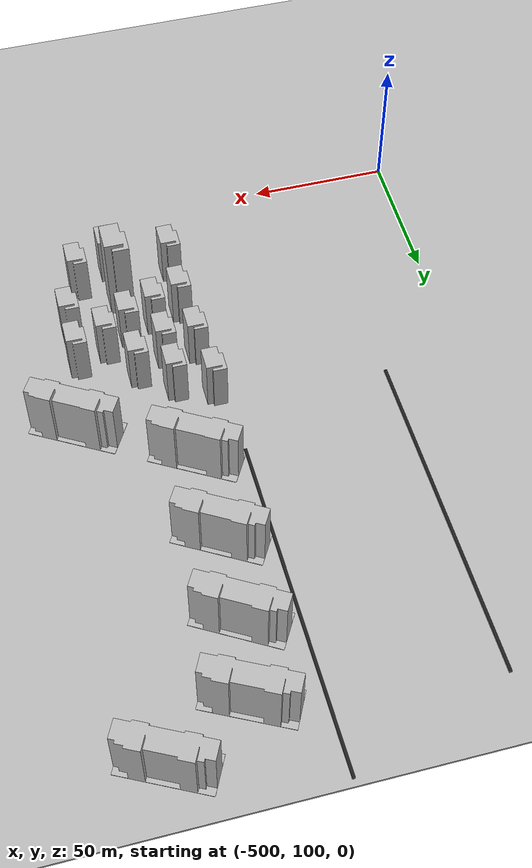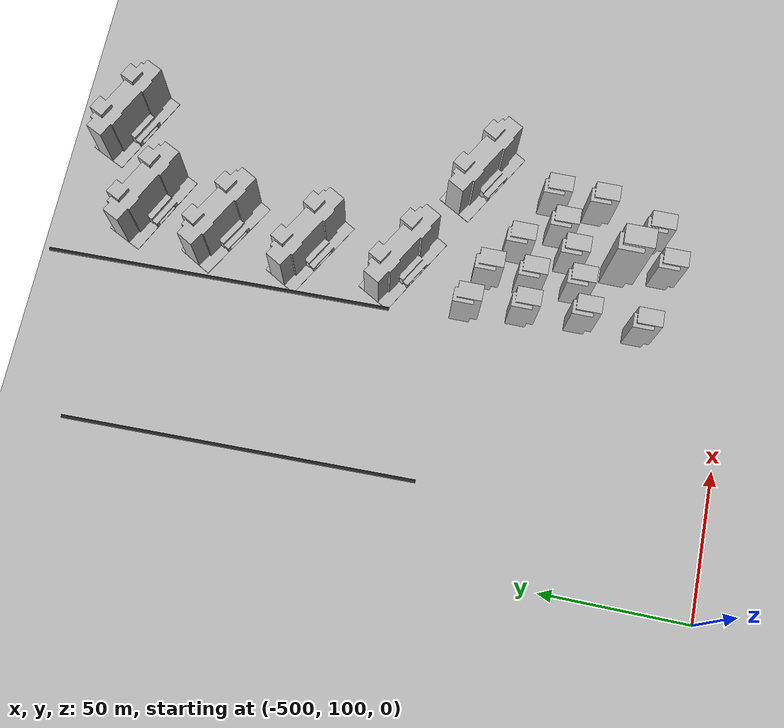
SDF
<sdf version="1.7">
 <world name="default">
  <model name="ground_plane">
   <static>1</static>
   <link name="link">
    <collision name="collision">
     <geometry><mesh><uri>model://ground_plane/scripts/plane.dae</uri><normal>0 0 1</normal></mesh></geometry>
     <surface><friction><ode><mu>100</mu><mu2>50</mu2></ode></friction></surface>
    </collision>
    <visual name="visual">
     <geometry><mesh><uri>model://ground_plane/scripts/plane.dae</uri><normal>0 0 1</normal></mesh></geometry>
     <material>
      <lighting>1</lighting>
      <script><uri>model://ground_plane/scripts/plane.jpg</uri><name>__default__</name></script>
      <shader type="pixel"/>
     </material>
    </visual>
   </link>
  </model>
  <model name="apartment0">
   <static>1</static>
   <link name="link_0">
    <inertial>
     <mass>1</mass>
     <inertia>
      <ixx>0.166667</ixx>
      <ixy>0</ixy>
      <ixz>0</ixz>
      <iyy>0.166667</iyy>
      <iyz>0</iyz>
      <izz>0.166667</izz>
     </inertia>
    </inertial>
    <pose>0.000226 2e-06 0 0 -0 0</pose>
    <visual name="visual">
     <geometry>
      <mesh><uri>model://apartment0/scripts/apartment.dae</uri><scale>0.42 0.21 0.14</scale></mesh>
     </geometry>
     <material>
      <lighting>1</lighting>
      <script><uri>model://apartment0/scripts/building.jpg</uri><name>__default__</name></script>
      <shader type="pixel"/>
     </material>
    </visual>
    <collision name="collision">
     <geometry>
      <mesh><uri>model://apartment0/scripts/apartment.dae</uri><scale>0.42 0.21 0.14</scale></mesh>
     </geometry>
     <surface>
      <friction>
       <ode><mu>1</mu><mu2>1</mu2><fdir1>0 0 0</fdir1><slip1>0</slip1><slip2>0</slip2></ode>
       <torsional>
        <coefficient>1</coefficient>
        <patch_radius>0</patch_radius>
        <surface_radius>0</surface_radius>
        <use_patch_radius>1</use_patch_radius>
        <ode><slip>0</slip></ode>
       </torsional>
      </friction>
      <bounce><restitution_coefficient>0</restitution_coefficient><threshold>1e+06</threshold></bounce>
      <contact>
       <collide_without_contact>0</collide_without_contact>
       <collide_without_contact_bitmask>1</collide_without_contact_bitmask>
       <collide_bitmask>1</collide_bitmask>
       <ode>
        <soft_cfm>0</soft_cfm>
        <soft_erp>0.2</soft_erp>
        <kp>1e+13</kp>
        <kd>1</kd>
        <max_vel>0.01</max_vel>
        <min_depth>0</min_depth>
       </ode>
       <bullet>
        <split_impulse>1</split_impulse>
        <split_impulse_penetration_threshold>-0.01</split_impulse_penetration_threshold>
        <soft_cfm>0</soft_cfm>
        <soft_erp>0.2</soft_erp>
        <kp>1e+13</kp>
        <kd>1</kd>
       </bullet>
      </contact>
     </surface>
    </collision>
   </link>
   <static>0</static>
   <pose>-394.801 304.425 0.2281 0 0 -0.465657</pose>
  </model>
  <model name="apartment0_clone_2">
   <static>1</static>
   <link name="link_0">
    <inertial>
     <mass>1</mass>
     <inertia>
      <ixx>0.166667</ixx>
      <ixy>0</ixy>
      <ixz>0</ixz>
      <iyy>0.166667</iyy>
      <iyz>0</iyz>
      <izz>0.166667</izz>
     </inertia>
    </inertial>
    <pose>0.000226 2e-06 0 0 -0 0</pose>
    <visual name="visual">
     <geometry>
      <mesh><uri>model://apartment0/scripts/apartment.dae</uri><scale>0.42 0.21 0.14</scale></mesh>
     </geometry>
     <material>
      <lighting>1</lighting>
      <script><uri>model://apartment0/scripts/building.jpg</uri><name>__default__</name></script>
      <shader type="pixel"/>
     </material>
    </visual>
    <collision name="collision">
     <geometry>
      <mesh><uri>model://apartment0/scripts/apartment.dae</uri><scale>0.42 0.21 0.14</scale></mesh>
     </geometry>
     <surface>
      <friction>
       <ode><mu>1</mu><mu2>1</mu2><fdir1>0 0 0</fdir1><slip1>0</slip1><slip2>0</slip2></ode>
       <torsional>
        <coefficient>1</coefficient>
        <patch_radius>0</patch_radius>
        <surface_radius>0</surface_radius>
        <use_patch_radius>1</use_patch_radius>
        <ode><slip>0</slip></ode>
       </torsional>
      </friction>
      <bounce><restitution_coefficient>0</restitution_coefficient><threshold>1e+06</threshold></bounce>
      <contact>
       <collide_without_contact>0</collide_without_contact>
       <collide_without_contact_bitmask>1</collide_without_contact_bitmask>
       <collide_bitmask>1</collide_bitmask>
       <ode>
        <soft_cfm>0</soft_cfm>
        <soft_erp>0.2</soft_erp>
        <kp>1e+13</kp>
        <kd>1</kd>
        <max_vel>0.01</max_vel>
        <min_depth>0</min_depth>
       </ode>
       <bullet>
        <split_impulse>1</split_impulse>
        <split_impulse_penetration_threshold>-0.01</split_impulse_penetration_threshold>
        <soft_cfm>0</soft_cfm>
        <soft_erp>0.2</soft_erp>
        <kp>1e+13</kp>
        <kd>1</kd>
       </bullet>
      </contact>
     </surface>
    </collision>
   </link>
   <static>0</static>
   <pose>-366.107 318.006 0.2281 0 0 -0.465657</pose>
  </model>
  <model name="apartment1_0_clone_13">
   <static>1</static>
   <link name="link_0">
    <inertial>
     <mass>1</mass>
     <inertia>
      <ixx>0.166667</ixx>
      <ixy>0</ixy>
      <ixz>0</ixz>
      <iyy>0.166667</iyy>
      <iyz>0</iyz>
      <izz>0.166667</izz>
     </inertia>
    </inertial>
    <pose>1e-06 -0 0 0 -0 0</pose>
    <visual name="visual">
     <geometry>
      <mesh><uri>model://apartment1/scripts/apartment1.dae</uri><scale>0.14 0.14 0.175</scale></mesh>
     </geometry>
     <material>
      <lighting>1</lighting>
      <script><uri>model://apartment1/scripts/apartment1.jpg</uri><name>__default__</name></script>
      <shader type="pixel"/>
     </material>
    </visual>
    <collision name="collision">
     <geometry>
      <mesh><uri>model://apartment1/scripts/apartment1.dae</uri><scale>0.14 0.14 0.175</scale></mesh>
     </geometry>
     <surface>
      <friction>
       <ode><mu>1</mu><mu2>1</mu2><fdir1>0 0 0</fdir1><slip1>0</slip1><slip2>0</slip2></ode>
       <torsional>
        <coefficient>1</coefficient>
        <patch_radius>0</patch_radius>
        <surface_radius>0</surface_radius>
        <use_patch_radius>1</use_patch_radius>
        <ode><slip>0</slip></ode>
       </torsional>
      </friction>
      <bounce><restitution_coefficient>0</restitution_coefficient><threshold>1e+06</threshold></bounce>
      <contact>
       <collide_without_contact>0</collide_without_contact>
       <collide_without_contact_bitmask>1</collide_without_contact_bitmask>
       <collide_bitmask>1</collide_bitmask>
       <ode>
        <soft_cfm>0</soft_cfm>
        <soft_erp>0.2</soft_erp>
        <kp>1e+13</kp>
        <kd>1</kd>
        <max_vel>0.01</max_vel>
        <min_depth>0</min_depth>
       </ode>
       <bullet>
        <split_impulse>1</split_impulse>
        <split_impulse_penetration_threshold>-0.01</split_impulse_penetration_threshold>
        <soft_cfm>0</soft_cfm>
        <soft_erp>0.2</soft_erp>
        <kp>1e+13</kp>
        <kd>1</kd>
       </bullet>
      </contact>
     </surface>
    </collision>
   </link>
   <static>0</static>
   <pose>-407.986 130.369 0 0 -0 0</pose>
  </model>
  <model name="apartment1_0_clone_14">
   <static>1</static>
   <link name="link_0">
    <inertial>
     <mass>1</mass>
     <inertia>
      <ixx>0.166667</ixx>
      <ixy>0</ixy>
      <ixz>0</ixz>
      <iyy>0.166667</iyy>
      <iyz>0</iyz>
      <izz>0.166667</izz>
     </inertia>
    </inertial>
    <pose>1e-06 -0 0 0 -0 0</pose>
    <visual name="visual">
     <geometry>
      <mesh><uri>model://apartment1/scripts/apartment1.dae</uri><scale>0.14 0.14 0.175</scale></mesh>
     </geometry>
     <material>
      <lighting>1</lighting>
      <script><uri>model://apartment1/scripts/apartment1.jpg</uri><name>__default__</name></script>
      <shader type="pixel"/>
     </material>
    </visual>
    <collision name="collision">
     <geometry>
      <mesh><uri>model://apartment1/scripts/apartment1.dae</uri><scale>0.14 0.14 0.175</scale></mesh>
     </geometry>
     <surface>
      <friction>
       <ode><mu>1</mu><mu2>1</mu2><fdir1>0 0 0</fdir1><slip1>0</slip1><slip2>0</slip2></ode>
       <torsional>
        <coefficient>1</coefficient>
        <patch_radius>0</patch_radius>
        <surface_radius>0</surface_radius>
        <use_patch_radius>1</use_patch_radius>
        <ode><slip>0</slip></ode>
       </torsional>
      </friction>
      <bounce><restitution_coefficient>0</restitution_coefficient><threshold>1e+06</threshold></bounce>
      <contact>
       <collide_without_contact>0</collide_without_contact>
       <collide_without_contact_bitmask>1</collide_without_contact_bitmask>
       <collide_bitmask>1</collide_bitmask>
       <ode>
        <soft_cfm>0</soft_cfm>
        <soft_erp>0.2</soft_erp>
        <kp>1e+13</kp>
        <kd>1</kd>
        <max_vel>0.01</max_vel>
        <min_depth>0</min_depth>
       </ode>
       <bullet>
        <split_impulse>1</split_impulse>
        <split_impulse_penetration_threshold>-0.01</split_impulse_penetration_threshold>
        <soft_cfm>0</soft_cfm>
        <soft_erp>0.2</soft_erp>
        <kp>1e+13</kp>
        <kd>1</kd>
       </bullet>
      </contact>
     </surface>
    </collision>
   </link>
   <static>0</static>
   <pose>-407.388 150.37 0 0 -0 0</pose>
  </model>
  <model name="apartment1_0_clone_15">
   <static>1</static>
   <link name="link_0">
    <inertial>
     <mass>1</mass>
     <inertia>
      <ixx>0.166667</ixx>
      <ixy>0</ixy>
      <ixz>0</ixz>
      <iyy>0.166667</iyy>
      <iyz>0</iyz>
      <izz>0.166667</izz>
     </inertia>
    </inertial>
    <pose>1e-06 -0 0 0 -0 0</pose>
    <visual name="visual">
     <geometry>
      <mesh><uri>model://apartment1/scripts/apartment1.dae</uri><scale>0.14 0.14 0.175</scale></mesh>
     </geometry>
     <material>
      <lighting>1</lighting>
      <script><uri>model://apartment1/scripts/apartment1.jpg</uri><name>__default__</name></script>
      <shader type="pixel"/>
     </material>
    </visual>
    <collision name="collision">
     <geometry>
      <mesh><uri>model://apartment1/scripts/apartment1.dae</uri><scale>0.14 0.14 0.175</scale></mesh>
     </geometry>
     <surface>
      <friction>
       <ode><mu>1</mu><mu2>1</mu2><fdir1>0 0 0</fdir1><slip1>0</slip1><slip2>0</slip2></ode>
       <torsional>
        <coefficient>1</coefficient>
        <patch_radius>0</patch_radius>
        <surface_radius>0</surface_radius>
        <use_patch_radius>1</use_patch_radius>
        <ode><slip>0</slip></ode>
       </torsional>
      </friction>
      <bounce><restitution_coefficient>0</restitution_coefficient><threshold>1e+06</threshold></bounce>
      <contact>
       <collide_without_contact>0</collide_without_contact>
       <collide_without_contact_bitmask>1</collide_without_contact_bitmask>
       <collide_bitmask>1</collide_bitmask>
       <ode>
        <soft_cfm>0</soft_cfm>
        <soft_erp>0.2</soft_erp>
        <kp>1e+13</kp>
        <kd>1</kd>
        <max_vel>0.01</max_vel>
        <min_depth>0</min_depth>
       </ode>
       <bullet>
        <split_impulse>1</split_impulse>
        <split_impulse_penetration_threshold>-0.01</split_impulse_penetration_threshold>
        <soft_cfm>0</soft_cfm>
        <soft_erp>0.2</soft_erp>
        <kp>1e+13</kp>
        <kd>1</kd>
       </bullet>
      </contact>
     </surface>
    </collision>
   </link>
   <static>0</static>
   <pose>-408.838 170.208 0 0 -0 0</pose>
  </model>
  <model name="apartment1_0_clone_1_clone_34">
   <static>1</static>
   <link name="link_0">
    <inertial>
     <mass>1</mass>
     <inertia>
      <ixx>0.166667</ixx>
      <ixy>0</ixy>
      <ixz>0</ixz>
      <iyy>0.166667</iyy>
      <iyz>0</iyz>
      <izz>0.166667</izz>
     </inertia>
    </inertial>
    <pose>1e-06 -0 0 0 -0 0</pose>
    <visual name="visual">
     <geometry>
      <mesh><uri>model://apartment1/scripts/apartment1.dae</uri><scale>0.14 0.14 0.175</scale></mesh>
     </geometry>
     <material>
      <lighting>1</lighting>
      <script><uri>model://apartment1/scripts/apartment1.jpg</uri><name>__default__</name></script>
      <shader type="pixel"/>
     </material>
    </visual>
    <collision name="collision">
     <geometry>
      <mesh><uri>model://apartment1/scripts/apartment1.dae</uri><scale>0.14 0.14 0.175</scale></mesh>
     </geometry>
     <surface>
      <friction>
       <ode><mu>1</mu><mu2>1</mu2><fdir1>0 0 0</fdir1><slip1>0</slip1><slip2>0</slip2></ode>
       <torsional>
        <coefficient>1</coefficient>
        <patch_radius>0</patch_radius>
        <surface_radius>0</surface_radius>
        <use_patch_radius>1</use_patch_radius>
        <ode><slip>0</slip></ode>
       </torsional>
      </friction>
      <bounce><restitution_coefficient>0</restitution_coefficient><threshold>1e+06</threshold></bounce>
      <contact>
       <collide_without_contact>0</collide_without_contact>
       <collide_without_contact_bitmask>1</collide_without_contact_bitmask>
       <collide_bitmask>1</collide_bitmask>
       <ode>
        <soft_cfm>0</soft_cfm>
        <soft_erp>0.2</soft_erp>
        <kp>1e+13</kp>
        <kd>1</kd>
        <max_vel>0.01</max_vel>
        <min_depth>0</min_depth>
       </ode>
       <bullet>
        <split_impulse>1</split_impulse>
        <split_impulse_penetration_threshold>-0.01</split_impulse_penetration_threshold>
        <soft_cfm>0</soft_cfm>
        <soft_erp>0.2</soft_erp>
        <kp>1e+13</kp>
        <kd>1</kd>
       </bullet>
      </contact>
     </surface>
    </collision>
   </link>
   <static>0</static>
   <pose>-385.97 124.803 0 0 -0 0</pose>
  </model>
  <model name="apartment1_0_clone_1_clone_35">
   <static>1</static>
   <link name="link_0">
    <inertial>
     <mass>1</mass>
     <inertia>
      <ixx>0.166667</ixx>
      <ixy>0</ixy>
      <ixz>0</ixz>
      <iyy>0.166667</iyy>
      <iyz>0</iyz>
      <izz>0.166667</izz>
     </inertia>
    </inertial>
    <pose>1e-06 -0 0 0 -0 0</pose>
    <visual name="visual">
     <geometry>
      <mesh><uri>model://apartment1/scripts/apartment1.dae</uri><scale>0.14 0.14 0.175</scale></mesh>
     </geometry>
     <material>
      <lighting>1</lighting>
      <script><uri>model://apartment1/scripts/apartment1.jpg</uri><name>__default__</name></script>
      <shader type="pixel"/>
     </material>
    </visual>
    <collision name="collision">
     <geometry>
      <mesh><uri>model://apartment1/scripts/apartment1.dae</uri><scale>0.14 0.14 0.175</scale></mesh>
     </geometry>
     <surface>
      <friction>
       <ode><mu>1</mu><mu2>1</mu2><fdir1>0 0 0</fdir1><slip1>0</slip1><slip2>0</slip2></ode>
       <torsional>
        <coefficient>1</coefficient>
        <patch_radius>0</patch_radius>
        <surface_radius>0</surface_radius>
        <use_patch_radius>1</use_patch_radius>
        <ode><slip>0</slip></ode>
       </torsional>
      </friction>
      <bounce><restitution_coefficient>0</restitution_coefficient><threshold>1e+06</threshold></bounce>
      <contact>
       <collide_without_contact>0</collide_without_contact>
       <collide_without_contact_bitmask>1</collide_without_contact_bitmask>
       <collide_bitmask>1</collide_bitmask>
       <ode>
        <soft_cfm>0</soft_cfm>
        <soft_erp>0.2</soft_erp>
        <kp>1e+13</kp>
        <kd>1</kd>
        <max_vel>0.01</max_vel>
        <min_depth>0</min_depth>
       </ode>
       <bullet>
        <split_impulse>1</split_impulse>
        <split_impulse_penetration_threshold>-0.01</split_impulse_penetration_threshold>
        <soft_cfm>0</soft_cfm>
        <soft_erp>0.2</soft_erp>
        <kp>1e+13</kp>
        <kd>1</kd>
       </bullet>
      </contact>
     </surface>
    </collision>
   </link>
   <static>0</static>
   <pose>-373.725 130.395 0 0 -0 0</pose>
  </model>
  <model name="apartment1_0_clone_1_clone_42">
   <static>1</static>
   <link name="link_0">
    <inertial>
     <mass>1</mass>
     <inertia>
      <ixx>0.166667</ixx>
      <ixy>0</ixy>
      <ixz>0</ixz>
      <iyy>0.166667</iyy>
      <iyz>0</iyz>
      <izz>0.166667</izz>
     </inertia>
    </inertial>
    <pose>1e-06 -0 0 0 -0 0</pose>
    <visual name="visual">
     <geometry>
      <mesh><uri>model://apartment1/scripts/apartment1.dae</uri><scale>0.14 0.14 0.175</scale></mesh>
     </geometry>
     <material>
      <lighting>1</lighting>
      <script><uri>model://apartment1/scripts/apartment1.jpg</uri><name>__default__</name></script>
      <shader type="pixel"/>
     </material>
    </visual>
    <collision name="collision">
     <geometry>
      <mesh><uri>model://apartment1/scripts/apartment1.dae</uri><scale>0.14 0.14 0.175</scale></mesh>
     </geometry>
     <surface>
      <friction>
       <ode><mu>1</mu><mu2>1</mu2><fdir1>0 0 0</fdir1><slip1>0</slip1><slip2>0</slip2></ode>
       <torsional>
        <coefficient>1</coefficient>
        <patch_radius>0</patch_radius>
        <surface_radius>0</surface_radius>
        <use_patch_radius>1</use_patch_radius>
        <ode><slip>0</slip></ode>
       </torsional>
      </friction>
      <bounce><restitution_coefficient>0</restitution_coefficient><threshold>1e+06</threshold></bounce>
      <contact>
       <collide_without_contact>0</collide_without_contact>
       <collide_without_contact_bitmask>1</collide_without_contact_bitmask>
       <collide_bitmask>1</collide_bitmask>
       <ode>
        <soft_cfm>0</soft_cfm>
        <soft_erp>0.2</soft_erp>
        <kp>1e+13</kp>
        <kd>1</kd>
        <max_vel>0.01</max_vel>
        <min_depth>0</min_depth>
       </ode>
       <bullet>
        <split_impulse>1</split_impulse>
        <split_impulse_penetration_threshold>-0.01</split_impulse_penetration_threshold>
        <soft_cfm>0</soft_cfm>
        <soft_erp>0.2</soft_erp>
        <kp>1e+13</kp>
        <kd>1</kd>
       </bullet>
      </contact>
     </surface>
    </collision>
   </link>
   <static>0</static>
   <pose>-367.268 150.289 0 0 -0 0</pose>
  </model>
  <model name="apartment1_0_clone_1_clone_44">
   <static>1</static>
   <link name="link_0">
    <inertial>
     <mass>1</mass>
     <inertia>
      <ixx>0.166667</ixx>
      <ixy>0</ixy>
      <ixz>0</ixz>
      <iyy>0.166667</iyy>
      <iyz>0</iyz>
      <izz>0.166667</izz>
     </inertia>
    </inertial>
    <pose>1e-06 -0 0 0 -0 0</pose>
    <visual name="visual">
     <geometry>
      <mesh><uri>model://apartment1/scripts/apartment1.dae</uri><scale>0.14 0.14 0.175</scale></mesh>
     </geometry>
     <material>
      <lighting>1</lighting>
      <script><uri>model://apartment1/scripts/apartment1.jpg</uri><name>__default__</name></script>
      <shader type="pixel"/>
     </material>
    </visual>
    <collision name="collision">
     <geometry>
      <mesh><uri>model://apartment1/scripts/apartment1.dae</uri><scale>0.14 0.14 0.175</scale></mesh>
     </geometry>
     <surface>
      <friction>
       <ode><mu>1</mu><mu2>1</mu2><fdir1>0 0 0</fdir1><slip1>0</slip1><slip2>0</slip2></ode>
       <torsional>
        <coefficient>1</coefficient>
        <patch_radius>0</patch_radius>
        <surface_radius>0</surface_radius>
        <use_patch_radius>1</use_patch_radius>
        <ode><slip>0</slip></ode>
       </torsional>
      </friction>
      <bounce><restitution_coefficient>0</restitution_coefficient><threshold>1e+06</threshold></bounce>
      <contact>
       <collide_without_contact>0</collide_without_contact>
       <collide_without_contact_bitmask>1</collide_without_contact_bitmask>
       <collide_bitmask>1</collide_bitmask>
       <ode>
        <soft_cfm>0</soft_cfm>
        <soft_erp>0.2</soft_erp>
        <kp>1e+13</kp>
        <kd>1</kd>
        <max_vel>0.01</max_vel>
        <min_depth>0</min_depth>
       </ode>
       <bullet>
        <split_impulse>1</split_impulse>
        <split_impulse_penetration_threshold>-0.01</split_impulse_penetration_threshold>
        <soft_cfm>0</soft_cfm>
        <soft_erp>0.2</soft_erp>
        <kp>1e+13</kp>
        <kd>1</kd>
       </bullet>
      </contact>
     </surface>
    </collision>
   </link>
   <static>0</static>
   <pose>-397.246 153.558 0 0 -0 0</pose>
  </model>
  <model name="apartment1_0_clone_1_clone_45">
   <static>1</static>
   <link name="link_0">
    <inertial>
     <mass>1</mass>
     <inertia>
      <ixx>0.166667</ixx>
      <ixy>0</ixy>
      <ixz>0</ixz>
      <iyy>0.166667</iyy>
      <iyz>0</iyz>
      <izz>0.166667</izz>
     </inertia>
    </inertial>
    <pose>1e-06 -0 0 0 -0 0</pose>
    <visual name="visual">
     <geometry>
      <mesh><uri>model://apartment1/scripts/apartment1.dae</uri><scale>0.14 0.14 0.175</scale></mesh>
     </geometry>
     <material>
      <lighting>1</lighting>
      <script><uri>model://apartment1/scripts/apartment1.jpg</uri><name>__default__</name></script>
      <shader type="pixel"/>
     </material>
    </visual>
    <collision name="collision">
     <geometry>
      <mesh><uri>model://apartment1/scripts/apartment1.dae</uri><scale>0.14 0.14 0.175</scale></mesh>
     </geometry>
     <surface>
      <friction>
       <ode><mu>1</mu><mu2>1</mu2><fdir1>0 0 0</fdir1><slip1>0</slip1><slip2>0</slip2></ode>
       <torsional>
        <coefficient>1</coefficient>
        <patch_radius>0</patch_radius>
        <surface_radius>0</surface_radius>
        <use_patch_radius>1</use_patch_radius>
        <ode><slip>0</slip></ode>
       </torsional>
      </friction>
      <bounce><restitution_coefficient>0</restitution_coefficient><threshold>1e+06</threshold></bounce>
      <contact>
       <collide_without_contact>0</collide_without_contact>
       <collide_without_contact_bitmask>1</collide_without_contact_bitmask>
       <collide_bitmask>1</collide_bitmask>
       <ode>
        <soft_cfm>0</soft_cfm>
        <soft_erp>0.2</soft_erp>
        <kp>1e+13</kp>
        <kd>1</kd>
        <max_vel>0.01</max_vel>
        <min_depth>0</min_depth>
       </ode>
       <bullet>
        <split_impulse>1</split_impulse>
        <split_impulse_penetration_threshold>-0.01</split_impulse_penetration_threshold>
        <soft_cfm>0</soft_cfm>
        <soft_erp>0.2</soft_erp>
        <kp>1e+13</kp>
        <kd>1</kd>
       </bullet>
      </contact>
     </surface>
    </collision>
   </link>
   <static>0</static>
   <pose>-387.065 157.176 0 0 -0 0</pose>
  </model>
  <model name="apartment1_0_clone_1_clone_46">
   <static>1</static>
   <link name="link_0">
    <inertial>
     <mass>1</mass>
     <inertia>
      <ixx>0.166667</ixx>
      <ixy>0</ixy>
      <ixz>0</ixz>
      <iyy>0.166667</iyy>
      <iyz>0</iyz>
      <izz>0.166667</izz>
     </inertia>
    </inertial>
    <pose>1e-06 -0 0 0 -0 0</pose>
    <visual name="visual">
     <geometry>
      <mesh><uri>model://apartment1/scripts/apartment1.dae</uri><scale>0.14 0.14 0.175</scale></mesh>
     </geometry>
     <material>
      <lighting>1</lighting>
      <script><uri>model://apartment1/scripts/apartment1.jpg</uri><name>__default__</name></script>
      <shader type="pixel"/>
     </material>
    </visual>
    <collision name="collision">
     <geometry>
      <mesh><uri>model://apartment1/scripts/apartment1.dae</uri><scale>0.14 0.14 0.175</scale></mesh>
     </geometry>
     <surface>
      <friction>
       <ode><mu>1</mu><mu2>1</mu2><fdir1>0 0 0</fdir1><slip1>0</slip1><slip2>0</slip2></ode>
       <torsional>
        <coefficient>1</coefficient>
        <patch_radius>0</patch_radius>
        <surface_radius>0</surface_radius>
        <use_patch_radius>1</use_patch_radius>
        <ode><slip>0</slip></ode>
       </torsional>
      </friction>
      <bounce><restitution_coefficient>0</restitution_coefficient><threshold>1e+06</threshold></bounce>
      <contact>
       <collide_without_contact>0</collide_without_contact>
       <collide_without_contact_bitmask>1</collide_without_contact_bitmask>
       <collide_bitmask>1</collide_bitmask>
       <ode>
        <soft_cfm>0</soft_cfm>
        <soft_erp>0.2</soft_erp>
        <kp>1e+13</kp>
        <kd>1</kd>
        <max_vel>0.01</max_vel>
        <min_depth>0</min_depth>
       </ode>
       <bullet>
        <split_impulse>1</split_impulse>
        <split_impulse_penetration_threshold>-0.01</split_impulse_penetration_threshold>
        <soft_cfm>0</soft_cfm>
        <soft_erp>0.2</soft_erp>
        <kp>1e+13</kp>
        <kd>1</kd>
       </bullet>
      </contact>
     </surface>
    </collision>
   </link>
   <static>0</static>
   <pose>-378.13 162.137 0 0 -0 0</pose>
  </model>
  <model name="apartment1_0_clone_1_clone_47">
   <static>1</static>
   <link name="link_0">
    <inertial>
     <mass>1</mass>
     <inertia>
      <ixx>0.166667</ixx>
      <ixy>0</ixy>
      <ixz>0</ixz>
      <iyy>0.166667</iyy>
      <iyz>0</iyz>
      <izz>0.166667</izz>
     </inertia>
    </inertial>
    <pose>1e-06 -0 0 0 -0 0</pose>
    <visual name="visual">
     <geometry>
      <mesh><uri>model://apartment1/scripts/apartment1.dae</uri><scale>0.14 0.14 0.175</scale></mesh>
     </geometry>
     <material>
      <lighting>1</lighting>
      <script><uri>model://apartment1/scripts/apartment1.jpg</uri><name>__default__</name></script>
      <shader type="pixel"/>
     </material>
    </visual>
    <collision name="collision">
     <geometry>
      <mesh><uri>model://apartment1/scripts/apartment1.dae</uri><scale>0.14 0.14 0.175</scale></mesh>
     </geometry>
     <surface>
      <friction>
       <ode><mu>1</mu><mu2>1</mu2><fdir1>0 0 0</fdir1><slip1>0</slip1><slip2>0</slip2></ode>
       <torsional>
        <coefficient>1</coefficient>
        <patch_radius>0</patch_radius>
        <surface_radius>0</surface_radius>
        <use_patch_radius>1</use_patch_radius>
        <ode><slip>0</slip></ode>
       </torsional>
      </friction>
      <bounce><restitution_coefficient>0</restitution_coefficient><threshold>1e+06</threshold></bounce>
      <contact>
       <collide_without_contact>0</collide_without_contact>
       <collide_without_contact_bitmask>1</collide_without_contact_bitmask>
       <collide_bitmask>1</collide_bitmask>
       <ode>
        <soft_cfm>0</soft_cfm>
        <soft_erp>0.2</soft_erp>
        <kp>1e+13</kp>
        <kd>1</kd>
        <max_vel>0.01</max_vel>
        <min_depth>0</min_depth>
       </ode>
       <bullet>
        <split_impulse>1</split_impulse>
        <split_impulse_penetration_threshold>-0.01</split_impulse_penetration_threshold>
        <soft_cfm>0</soft_cfm>
        <soft_erp>0.2</soft_erp>
        <kp>1e+13</kp>
        <kd>1</kd>
       </bullet>
      </contact>
     </surface>
    </collision>
   </link>
   <static>0</static>
   <pose>-367.046 166.149 0 0 -0 0</pose>
  </model>
  <model name="apartment1_0_clone_1_clone_48">
   <static>1</static>
   <link name="link_0">
    <inertial>
     <mass>1</mass>
     <inertia>
      <ixx>0.166667</ixx>
      <ixy>0</ixy>
      <ixz>0</ixz>
      <iyy>0.166667</iyy>
      <iyz>0</iyz>
      <izz>0.166667</izz>
     </inertia>
    </inertial>
    <pose>1e-06 -0 0 0 -0 0</pose>
    <visual name="visual">
     <geometry>
      <mesh><uri>model://apartment1/scripts/apartment1.dae</uri><scale>0.14 0.14 0.175</scale></mesh>
     </geometry>
     <material>
      <lighting>1</lighting>
      <script><uri>model://apartment1/scripts/apartment1.jpg</uri><name>__default__</name></script>
      <shader type="pixel"/>
     </material>
    </visual>
    <collision name="collision">
     <geometry>
      <mesh><uri>model://apartment1/scripts/apartment1.dae</uri><scale>0.14 0.14 0.175</scale></mesh>
     </geometry>
     <surface>
      <friction>
       <ode><mu>1</mu><mu2>1</mu2><fdir1>0 0 0</fdir1><slip1>0</slip1><slip2>0</slip2></ode>
       <torsional>
        <coefficient>1</coefficient>
        <patch_radius>0</patch_radius>
        <surface_radius>0</surface_radius>
        <use_patch_radius>1</use_patch_radius>
        <ode><slip>0</slip></ode>
       </torsional>
      </friction>
      <bounce><restitution_coefficient>0</restitution_coefficient><threshold>1e+06</threshold></bounce>
      <contact>
       <collide_without_contact>0</collide_without_contact>
       <collide_without_contact_bitmask>1</collide_without_contact_bitmask>
       <collide_bitmask>1</collide_bitmask>
       <ode>
        <soft_cfm>0</soft_cfm>
        <soft_erp>0.2</soft_erp>
        <kp>1e+13</kp>
        <kd>1</kd>
        <max_vel>0.01</max_vel>
        <min_depth>0</min_depth>
       </ode>
       <bullet>
        <split_impulse>1</split_impulse>
        <split_impulse_penetration_threshold>-0.01</split_impulse_penetration_threshold>
        <soft_cfm>0</soft_cfm>
        <soft_erp>0.2</soft_erp>
        <kp>1e+13</kp>
        <kd>1</kd>
       </bullet>
      </contact>
     </surface>
    </collision>
   </link>
   <static>0</static>
   <pose>-397.635 169.661 0 0 -0 0</pose>
  </model>
  <model name="apartment1_0_clone_1_clone_49">
   <static>1</static>
   <link name="link_0">
    <inertial>
     <mass>1</mass>
     <inertia>
      <ixx>0.166667</ixx>
      <ixy>0</ixy>
      <ixz>0</ixz>
      <iyy>0.166667</iyy>
      <iyz>0</iyz>
      <izz>0.166667</izz>
     </inertia>
    </inertial>
    <pose>1e-06 -0 0 0 -0 0</pose>
    <visual name="visual">
     <geometry>
      <mesh><uri>model://apartment1/scripts/apartment1.dae</uri><scale>0.14 0.14 0.175</scale></mesh>
     </geometry>
     <material>
      <lighting>1</lighting>
      <script><uri>model://apartment1/scripts/apartment1.jpg</uri><name>__default__</name></script>
      <shader type="pixel"/>
     </material>
    </visual>
    <collision name="collision">
     <geometry>
      <mesh><uri>model://apartment1/scripts/apartment1.dae</uri><scale>0.14 0.14 0.175</scale></mesh>
     </geometry>
     <surface>
      <friction>
       <ode><mu>1</mu><mu2>1</mu2><fdir1>0 0 0</fdir1><slip1>0</slip1><slip2>0</slip2></ode>
       <torsional>
        <coefficient>1</coefficient>
        <patch_radius>0</patch_radius>
        <surface_radius>0</surface_radius>
        <use_patch_radius>1</use_patch_radius>
        <ode><slip>0</slip></ode>
       </torsional>
      </friction>
      <bounce><restitution_coefficient>0</restitution_coefficient><threshold>1e+06</threshold></bounce>
      <contact>
       <collide_without_contact>0</collide_without_contact>
       <collide_without_contact_bitmask>1</collide_without_contact_bitmask>
       <collide_bitmask>1</collide_bitmask>
       <ode>
        <soft_cfm>0</soft_cfm>
        <soft_erp>0.2</soft_erp>
        <kp>1e+13</kp>
        <kd>1</kd>
        <max_vel>0.01</max_vel>
        <min_depth>0</min_depth>
       </ode>
       <bullet>
        <split_impulse>1</split_impulse>
        <split_impulse_penetration_threshold>-0.01</split_impulse_penetration_threshold>
        <soft_cfm>0</soft_cfm>
        <soft_erp>0.2</soft_erp>
        <kp>1e+13</kp>
        <kd>1</kd>
       </bullet>
      </contact>
     </surface>
    </collision>
   </link>
   <static>0</static>
   <pose>-386.649 175.523 0 0 -0 0</pose>
  </model>
  <model name="apartment1_0_clone_1_clone_50">
   <static>1</static>
   <link name="link_0">
    <inertial>
     <mass>1</mass>
     <inertia>
      <ixx>0.166667</ixx>
      <ixy>0</ixy>
      <ixz>0</ixz>
      <iyy>0.166667</iyy>
      <iyz>0</iyz>
      <izz>0.166667</izz>
     </inertia>
    </inertial>
    <pose>1e-06 -0 0 0 -0 0</pose>
    <visual name="visual">
     <geometry>
      <mesh><uri>model://apartment1/scripts/apartment1.dae</uri><scale>0.14 0.14 0.175</scale></mesh>
     </geometry>
     <material>
      <lighting>1</lighting>
      <script><uri>model://apartment1/scripts/apartment1.jpg</uri><name>__default__</name></script>
      <shader type="pixel"/>
     </material>
    </visual>
    <collision name="collision">
     <geometry>
      <mesh><uri>model://apartment1/scripts/apartment1.dae</uri><scale>0.14 0.14 0.175</scale></mesh>
     </geometry>
     <surface>
      <friction>
       <ode><mu>1</mu><mu2>1</mu2><fdir1>0 0 0</fdir1><slip1>0</slip1><slip2>0</slip2></ode>
       <torsional>
        <coefficient>1</coefficient>
        <patch_radius>0</patch_radius>
        <surface_radius>0</surface_radius>
        <use_patch_radius>1</use_patch_radius>
        <ode><slip>0</slip></ode>
       </torsional>
      </friction>
      <bounce><restitution_coefficient>0</restitution_coefficient><threshold>1e+06</threshold></bounce>
      <contact>
       <collide_without_contact>0</collide_without_contact>
       <collide_without_contact_bitmask>1</collide_without_contact_bitmask>
       <collide_bitmask>1</collide_bitmask>
       <ode>
        <soft_cfm>0</soft_cfm>
        <soft_erp>0.2</soft_erp>
        <kp>1e+13</kp>
        <kd>1</kd>
        <max_vel>0.01</max_vel>
        <min_depth>0</min_depth>
       </ode>
       <bullet>
        <split_impulse>1</split_impulse>
        <split_impulse_penetration_threshold>-0.01</split_impulse_penetration_threshold>
        <soft_cfm>0</soft_cfm>
        <soft_erp>0.2</soft_erp>
        <kp>1e+13</kp>
        <kd>1</kd>
       </bullet>
      </contact>
     </surface>
    </collision>
   </link>
   <static>0</static>
   <pose>-398.065 184.228 0 0 -0 0</pose>
  </model>
  <model name="apartment1_0_clone_1_clone_51">
   <static>1</static>
   <link name="link_0">
    <inertial>
     <mass>1</mass>
     <inertia>
      <ixx>0.166667</ixx>
      <ixy>0</ixy>
      <ixz>0</ixz>
      <iyy>0.166667</iyy>
      <iyz>0</iyz>
      <izz>0.166667</izz>
     </inertia>
    </inertial>
    <pose>1e-06 -0 0 0 -0 0</pose>
    <visual name="visual">
     <geometry>
      <mesh><uri>model://apartment1/scripts/apartment1.dae</uri><scale>0.14 0.14 0.175</scale></mesh>
     </geometry>
     <material>
      <lighting>1</lighting>
      <script><uri>model://apartment1/scripts/apartment1.jpg</uri><name>__default__</name></script>
      <shader type="pixel"/>
     </material>
    </visual>
    <collision name="collision">
     <geometry>
      <mesh><uri>model://apartment1/scripts/apartment1.dae</uri><scale>0.14 0.14 0.175</scale></mesh>
     </geometry>
     <surface>
      <friction>
       <ode><mu>1</mu><mu2>1</mu2><fdir1>0 0 0</fdir1><slip1>0</slip1><slip2>0</slip2></ode>
       <torsional>
        <coefficient>1</coefficient>
        <patch_radius>0</patch_radius>
        <surface_radius>0</surface_radius>
        <use_patch_radius>1</use_patch_radius>
        <ode><slip>0</slip></ode>
       </torsional>
      </friction>
      <bounce><restitution_coefficient>0</restitution_coefficient><threshold>1e+06</threshold></bounce>
      <contact>
       <collide_without_contact>0</collide_without_contact>
       <collide_without_contact_bitmask>1</collide_without_contact_bitmask>
       <collide_bitmask>1</collide_bitmask>
       <ode>
        <soft_cfm>0</soft_cfm>
        <soft_erp>0.2</soft_erp>
        <kp>1e+13</kp>
        <kd>1</kd>
        <max_vel>0.01</max_vel>
        <min_depth>0</min_depth>
       </ode>
       <bullet>
        <split_impulse>1</split_impulse>
        <split_impulse_penetration_threshold>-0.01</split_impulse_penetration_threshold>
        <soft_cfm>0</soft_cfm>
        <soft_erp>0.2</soft_erp>
        <kp>1e+13</kp>
        <kd>1</kd>
       </bullet>
      </contact>
     </surface>
    </collision>
   </link>
   <static>0</static>
   <pose>-410.915 189.253 0 0 -0 0</pose>
  </model>
  <model name="apartment0_clone_clone">
   <static>1</static>
   <link name="link_0">
    <inertial>
     <mass>1</mass>
     <inertia>
      <ixx>0.166667</ixx>
      <ixy>0</ixy>
      <ixz>0</ixz>
      <iyy>0.166667</iyy>
      <iyz>0</iyz>
      <izz>0.166667</izz>
     </inertia>
    </inertial>
    <pose>0.000226 2e-06 0 0 -0 0</pose>
    <visual name="visual">
     <geometry>
      <mesh><uri>model://apartment0/scripts/apartment.dae</uri><scale>0.42 0.21 0.14</scale></mesh>
     </geometry>
     <material>
      <lighting>1</lighting>
      <script><uri>model://apartment0/scripts/building.jpg</uri><name>__default__</name></script>
      <shader type="pixel"/>
     </material>
    </visual>
    <collision name="collision">
     <geometry>
      <mesh><uri>model://apartment0/scripts/apartment.dae</uri><scale>0.42 0.21 0.14</scale></mesh>
     </geometry>
     <surface>
      <friction>
       <ode><mu>1</mu><mu2>1</mu2><fdir1>0 0 0</fdir1><slip1>0</slip1><slip2>0</slip2></ode>
       <torsional>
        <coefficient>1</coefficient>
        <patch_radius>0</patch_radius>
        <surface_radius>0</surface_radius>
        <use_patch_radius>1</use_patch_radius>
        <ode><slip>0</slip></ode>
       </torsional>
      </friction>
      <bounce><restitution_coefficient>0</restitution_coefficient><threshold>1e+06</threshold></bounce>
      <contact>
       <collide_without_contact>0</collide_without_contact>
       <collide_without_contact_bitmask>1</collide_without_contact_bitmask>
       <collide_bitmask>1</collide_bitmask>
       <ode>
        <soft_cfm>0</soft_cfm>
        <soft_erp>0.2</soft_erp>
        <kp>1e+13</kp>
        <kd>1</kd>
        <max_vel>0.01</max_vel>
        <min_depth>0</min_depth>
       </ode>
       <bullet>
        <split_impulse>1</split_impulse>
        <split_impulse_penetration_threshold>-0.01</split_impulse_penetration_threshold>
        <soft_cfm>0</soft_cfm>
        <soft_erp>0.2</soft_erp>
        <kp>1e+13</kp>
        <kd>1</kd>
       </bullet>
      </contact>
     </surface>
    </collision>
   </link>
   <static>0</static>
   <pose>-399.14 214.251 0.2281 0 0 -0.526265</pose>
  </model>
  <model name="apartment0_clone_clone_clone">
   <static>1</static>
   <link name="link_0">
    <inertial>
     <mass>1</mass>
     <inertia>
      <ixx>0.166667</ixx>
      <ixy>0</ixy>
      <ixz>0</ixz>
      <iyy>0.166667</iyy>
      <iyz>0</iyz>
      <izz>0.166667</izz>
     </inertia>
    </inertial>
    <pose>0.000226 2e-06 0 0 -0 0</pose>
    <visual name="visual">
     <geometry>
      <mesh><uri>model://apartment0/scripts/apartment.dae</uri><scale>0.42 0.21 0.14</scale></mesh>
     </geometry>
     <material>
      <lighting>1</lighting>
      <script><uri>model://apartment0/scripts/building.jpg</uri><name>__default__</name></script>
      <shader type="pixel"/>
     </material>
    </visual>
    <collision name="collision">
     <geometry>
      <mesh><uri>model://apartment0/scripts/apartment.dae</uri><scale>0.42 0.21 0.14</scale></mesh>
     </geometry>
     <surface>
      <friction>
       <ode><mu>1</mu><mu2>1</mu2><fdir1>0 0 0</fdir1><slip1>0</slip1><slip2>0</slip2></ode>
       <torsional>
        <coefficient>1</coefficient>
        <patch_radius>0</patch_radius>
        <surface_radius>0</surface_radius>
        <use_patch_radius>1</use_patch_radius>
        <ode><slip>0</slip></ode>
       </torsional>
      </friction>
      <bounce><restitution_coefficient>0</restitution_coefficient><threshold>1e+06</threshold></bounce>
      <contact>
       <collide_without_contact>0</collide_without_contact>
       <collide_without_contact_bitmask>1</collide_without_contact_bitmask>
       <collide_bitmask>1</collide_bitmask>
       <ode>
        <soft_cfm>0</soft_cfm>
        <soft_erp>0.2</soft_erp>
        <kp>1e+13</kp>
        <kd>1</kd>
        <max_vel>0.01</max_vel>
        <min_depth>0</min_depth>
       </ode>
       <bullet>
        <split_impulse>1</split_impulse>
        <split_impulse_penetration_threshold>-0.01</split_impulse_penetration_threshold>
        <soft_cfm>0</soft_cfm>
        <soft_erp>0.2</soft_erp>
        <kp>1e+13</kp>
        <kd>1</kd>
       </bullet>
      </contact>
     </surface>
    </collision>
   </link>
   <static>0</static>
   <pose>-361.976 192.821 0.2281 0 0 -0.526265</pose>
  </model>
  <model name="apartment0_clone_clone_clone_0">
   <static>1</static>
   <link name="link_0">
    <inertial>
     <mass>1</mass>
     <inertia>
      <ixx>0.166667</ixx>
      <ixy>0</ixy>
      <ixz>0</ixz>
      <iyy>0.166667</iyy>
      <iyz>0</iyz>
      <izz>0.166667</izz>
     </inertia>
    </inertial>
    <pose>0.000226 2e-06 0 0 -0 0</pose>
    <visual name="visual">
     <geometry>
      <mesh><uri>model://apartment0/scripts/apartment.dae</uri><scale>0.42 0.21 0.14</scale></mesh>
     </geometry>
     <material>
      <lighting>1</lighting>
      <script><uri>model://apartment0/scripts/building.jpg</uri><name>__default__</name></script>
      <shader type="pixel"/>
     </material>
    </visual>
    <collision name="collision">
     <geometry>
      <mesh><uri>model://apartment0/scripts/apartment.dae</uri><scale>0.42 0.21 0.14</scale></mesh>
     </geometry>
     <surface>
      <friction>
       <ode><mu>1</mu><mu2>1</mu2><fdir1>0 0 0</fdir1><slip1>0</slip1><slip2>0</slip2></ode>
       <torsional>
        <coefficient>1</coefficient>
        <patch_radius>0</patch_radius>
        <surface_radius>0</surface_radius>
        <use_patch_radius>1</use_patch_radius>
        <ode><slip>0</slip></ode>
       </torsional>
      </friction>
      <bounce><restitution_coefficient>0</restitution_coefficient><threshold>1e+06</threshold></bounce>
      <contact>
       <collide_without_contact>0</collide_without_contact>
       <collide_without_contact_bitmask>1</collide_without_contact_bitmask>
       <collide_bitmask>1</collide_bitmask>
       <ode>
        <soft_cfm>0</soft_cfm>
        <soft_erp>0.2</soft_erp>
        <kp>1e+13</kp>
        <kd>1</kd>
        <max_vel>0.01</max_vel>
        <min_depth>0</min_depth>
       </ode>
       <bullet>
        <split_impulse>1</split_impulse>
        <split_impulse_penetration_threshold>-0.01</split_impulse_penetration_threshold>
        <soft_cfm>0</soft_cfm>
        <soft_erp>0.2</soft_erp>
        <kp>1e+13</kp>
        <kd>1</kd>
       </bullet>
      </contact>
     </surface>
    </collision>
   </link>
   <static>0</static>
   <pose>-399.637 247.032 0.2281 0 0 -0.526265</pose>
  </model>
  <model name="apartment0_clone_clone_clone_2">
   <static>1</static>
   <link name="link_0">
    <inertial>
     <mass>1</mass>
     <inertia>
      <ixx>0.166667</ixx>
      <ixy>0</ixy>
      <ixz>0</ixz>
      <iyy>0.166667</iyy>
      <iyz>0</iyz>
      <izz>0.166667</izz>
     </inertia>
    </inertial>
    <pose>0.000226 2e-06 0 0 -0 0</pose>
    <visual name="visual">
     <geometry>
      <mesh><uri>model://apartment0/scripts/apartment.dae</uri><scale>0.42 0.21 0.14</scale></mesh>
     </geometry>
     <material>
      <lighting>1</lighting>
      <script><uri>model://apartment0/scripts/building.jpg</uri><name>__default__</name></script>
      <shader type="pixel"/>
     </material>
    </visual>
    <collision name="collision">
     <geometry>
      <mesh><uri>model://apartment0/scripts/apartment.dae</uri><scale>0.42 0.21 0.14</scale></mesh>
     </geometry>
     <surface>
      <friction>
       <ode><mu>1</mu><mu2>1</mu2><fdir1>0 0 0</fdir1><slip1>0</slip1><slip2>0</slip2></ode>
       <torsional>
        <coefficient>1</coefficient>
        <patch_radius>0</patch_radius>
        <surface_radius>0</surface_radius>
        <use_patch_radius>1</use_patch_radius>
        <ode><slip>0</slip></ode>
       </torsional>
      </friction>
      <bounce><restitution_coefficient>0</restitution_coefficient><threshold>1e+06</threshold></bounce>
      <contact>
       <collide_without_contact>0</collide_without_contact>
       <collide_without_contact_bitmask>1</collide_without_contact_bitmask>
       <collide_bitmask>1</collide_bitmask>
       <ode>
        <soft_cfm>0</soft_cfm>
        <soft_erp>0.2</soft_erp>
        <kp>1e+13</kp>
        <kd>1</kd>
        <max_vel>0.01</max_vel>
        <min_depth>0</min_depth>
       </ode>
       <bullet>
        <split_impulse>1</split_impulse>
        <split_impulse_penetration_threshold>-0.01</split_impulse_penetration_threshold>
        <soft_cfm>0</soft_cfm>
        <soft_erp>0.2</soft_erp>
        <kp>1e+13</kp>
        <kd>1</kd>
       </bullet>
      </contact>
     </surface>
    </collision>
   </link>
   <static>0</static>
   <pose>-398.522 277.487 0.2281 0 0 -0.526265</pose>
  </model>
  <model name="tower">
   <static>1</static>
   <link name="link_0">
    <inertial>
     <mass>1</mass>
     <inertia>
      <ixx>0.166667</ixx>
      <ixy>0</ixy>
      <ixz>0</ixz>
      <iyy>0.166667</iyy>
      <iyz>0</iyz>
      <izz>0.166667</izz>
     </inertia>
    </inertial>
    <pose>1e-06 -0 0 0 -0 0</pose>
    <visual name="visual">
     <geometry><mesh><uri>model://tower/scripts/apartment1.dae</uri><scale>0.17 0.17 0.3</scale></mesh></geometry>
     <material>
      <lighting>1</lighting>
      <script><uri>model://tower/scripts/apartment1.jpg</uri><name>__default__</name></script>
      <shader type="pixel"/>
     </material>
    </visual>
    <collision name="collision">
     <geometry><mesh><uri>model://tower/scripts/apartment1.dae</uri><scale>0.17 0.17 0.3</scale></mesh></geometry>
     <surface>
      <friction>
       <ode><mu>1</mu><mu2>1</mu2><fdir1>0 0 0</fdir1><slip1>0</slip1><slip2>0</slip2></ode>
       <torsional>
        <coefficient>1</coefficient>
        <patch_radius>0</patch_radius>
        <surface_radius>0</surface_radius>
        <use_patch_radius>1</use_patch_radius>
        <ode><slip>0</slip></ode>
       </torsional>
      </friction>
      <bounce><restitution_coefficient>0</restitution_coefficient><threshold>1e+06</threshold></bounce>
      <contact>
       <collide_without_contact>0</collide_without_contact>
       <collide_without_contact_bitmask>1</collide_without_contact_bitmask>
       <collide_bitmask>1</collide_bitmask>
       <ode>
        <soft_cfm>0</soft_cfm>
        <soft_erp>0.2</soft_erp>
        <kp>1e+13</kp>
        <kd>1</kd>
        <max_vel>0.01</max_vel>
        <min_depth>0</min_depth>
       </ode>
       <bullet>
        <split_impulse>1</split_impulse>
        <split_impulse_penetration_threshold>-0.01</split_impulse_penetration_threshold>
        <soft_cfm>0</soft_cfm>
        <soft_erp>0.2</soft_erp>
        <kp>1e+13</kp>
        <kd>1</kd>
       </bullet>
      </contact>
     </surface>
    </collision>
   </link>
   <static>0</static>
   <pose>-387.107 139.737 0 0 -0 0</pose>
  </model>
  <model name="curb1_clone_clone">
   <static>1</static>
   <link name="link_5">
    <inertial>
     <mass>1</mass>
     <inertia>
      <ixx>0.166667</ixx>
      <ixy>0</ixy>
      <ixz>0</ixz>
      <iyy>0.166667</iyy>
      <iyz>0</iyz>
      <izz>0.166667</izz>
     </inertia>
    </inertial>
    <pose>-2.6e-05 -4.2e-05 0 0 -0 0</pose>
    <visual name="visual">
     <geometry><box><size>120 1 1.5</size></box></geometry>
     <material>
      <lighting>1</lighting>
      <script><uri>file://media/materials/scripts/gazebo.material</uri><name>Gazebo/Black</name></script>
      <shader type="pixel"/>
     </material>
    </visual>
    <collision name="collision">
     <geometry><box><size>120 1 1.5</size></box></geometry>
     <surface>
      <friction>
       <ode><mu>1</mu><mu2>1</mu2><fdir1>0 0 0</fdir1><slip1>0</slip1><slip2>0</slip2></ode>
       <torsional>
        <coefficient>1</coefficient>
        <patch_radius>0</patch_radius>
        <surface_radius>0</surface_radius>
        <use_patch_radius>1</use_patch_radius>
        <ode><slip>0</slip></ode>
       </torsional>
      </friction>
      <bounce><restitution_coefficient>0</restitution_coefficient><threshold>1e+06</threshold></bounce>
      <contact>
       <collide_without_contact>0</collide_without_contact>
       <collide_without_contact_bitmask>1</collide_without_contact_bitmask>
       <collide_bitmask>1</collide_bitmask>
       <ode>
        <soft_cfm>0</soft_cfm>
        <soft_erp>0.2</soft_erp>
        <kp>1e+13</kp>
        <kd>1</kd>
        <max_vel>0.01</max_vel>
        <min_depth>0</min_depth>
       </ode>
       <bullet>
        <split_impulse>1</split_impulse>
        <split_impulse_penetration_threshold>-0.01</split_impulse_penetration_threshold>
        <soft_cfm>0</soft_cfm>
        <soft_erp>0.2</soft_erp>
        <kp>1e+13</kp>
        <kd>1</kd>
       </bullet>
      </contact>
     </surface>
    </collision>
   </link>
   <static>0</static>
   <pose>-417.091 275.191 0 0 0 -1.55356</pose>
  </model>
  <model name="curb1_clone_clone_clone_0">
   <static>1</static>
   <link name="link_5">
    <inertial>
     <mass>1</mass>
     <inertia>
      <ixx>0.166667</ixx>
      <ixy>0</ixy>
      <ixz>0</ixz>
      <iyy>0.166667</iyy>
      <iyz>0</iyz>
      <izz>0.166667</izz>
     </inertia>
    </inertial>
    <pose>-2.6e-05 -4.2e-05 0 0 -0 0</pose>
    <visual name="visual">
     <geometry><box><size>120 1 1.5</size></box></geometry>
     <material>
      <lighting>1</lighting>
      <script><uri>file://media/materials/scripts/gazebo.material</uri><name>Gazebo/Black</name></script>
      <shader type="pixel"/>
     </material>
    </visual>
    <collision name="collision">
     <geometry><box><size>120 1 1.5</size></box></geometry>
     <surface>
      <friction>
       <ode><mu>1</mu><mu2>1</mu2><fdir1>0 0 0</fdir1><slip1>0</slip1><slip2>0</slip2></ode>
       <torsional>
        <coefficient>1</coefficient>
        <patch_radius>0</patch_radius>
        <surface_radius>0</surface_radius>
        <use_patch_radius>1</use_patch_radius>
        <ode><slip>0</slip></ode>
       </torsional>
      </friction>
      <bounce><restitution_coefficient>0</restitution_coefficient><threshold>1e+06</threshold></bounce>
      <contact>
       <collide_without_contact>0</collide_without_contact>
       <collide_without_contact_bitmask>1</collide_without_contact_bitmask>
       <collide_bitmask>1</collide_bitmask>
       <ode>
        <soft_cfm>0</soft_cfm>
        <soft_erp>0.2</soft_erp>
        <kp>1e+13</kp>
        <kd>1</kd>
        <max_vel>0.01</max_vel>
        <min_depth>0</min_depth>
       </ode>
       <bullet>
        <split_impulse>1</split_impulse>
        <split_impulse_penetration_threshold>-0.01</split_impulse_penetration_threshold>
        <soft_cfm>0</soft_cfm>
        <soft_erp>0.2</soft_erp>
        <kp>1e+13</kp>
        <kd>1</kd>
       </bullet>
      </contact>
     </surface>
    </collision>
   </link>
   <static>0</static>
   <pose>-473.54 255.014 0 0 0 -1.55356</pose>
  </model>
 </world>
</sdf>
